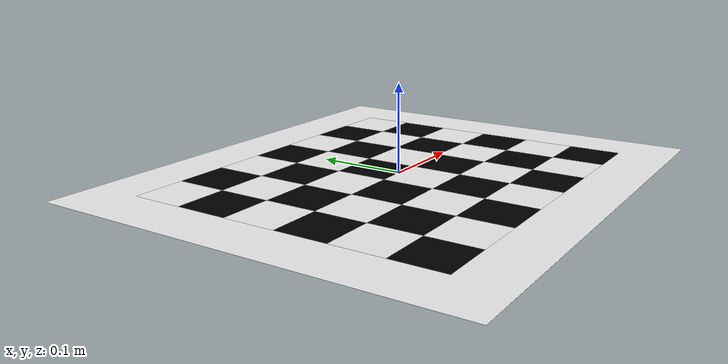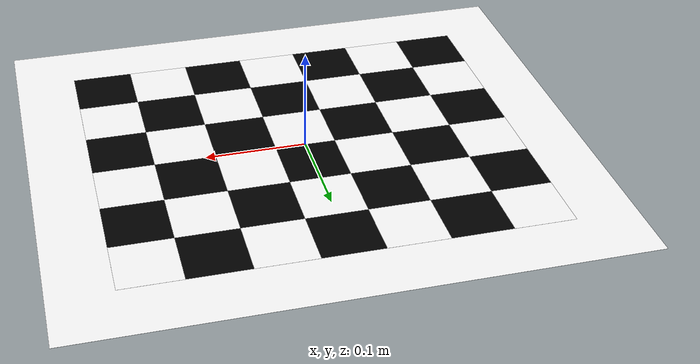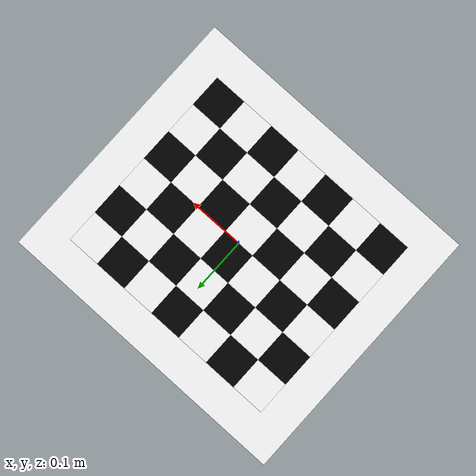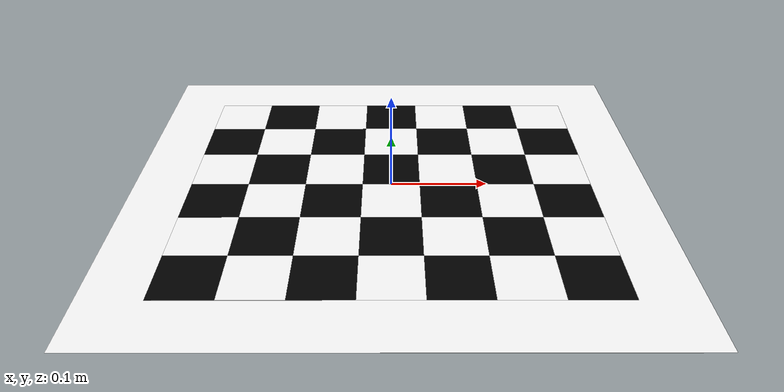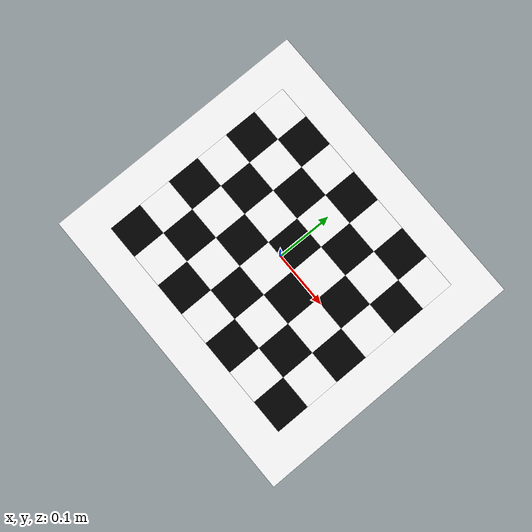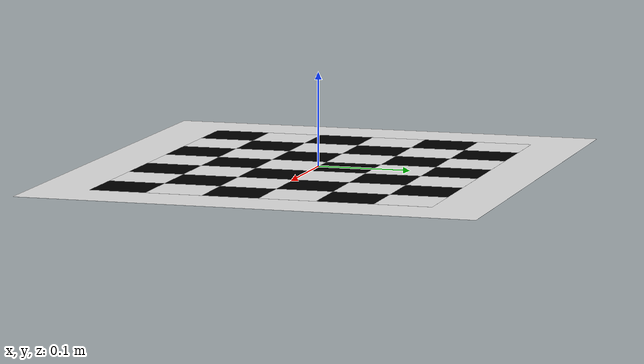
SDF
<?xml version="1.0"?>
<sdf version="1.4">
  <model name="checkerboard_7_6_0_06">
  <static>true</static>
  <link name="checkerboard_7_6_0_06_body">
      <visual name="checker_0_0">
        <pose>-0.18 -0.15 0 0 0 0</pose>
        <geometry>
          <box>
            <size>0.06 0.06 0.0002</size>
          </box>
        </geometry>
        <material>
          <ambient>0 0 0 1</ambient>
          <diffuse>0 0 0 1</diffuse>
          <specular>0.1 0.1 0.1 1</specular>
          <emissive>0 0 0 0</emissive>
        </material>
      </visual>
      <visual name="checker_0_1">
        <pose>-0.18 -0.09 0 0 0 0</pose>
        <geometry>
          <box>
            <size>0.06 0.06 0.0002</size>
          </box>
        </geometry>
        <material>
          <ambient>1 1 1 1</ambient>
          <diffuse>1 1 1 1</diffuse>
          <specular>1 1 1 1</specular>
          <emissive>1 1 1 1</emissive>
        </material>
      </visual>
      <visual name="checker_0_2">
        <pose>-0.18 -0.03 0 0 0 0</pose>
        <geometry>
          <box>
            <size>0.06 0.06 0.0002</size>
          </box>
        </geometry>
        <material>
          <ambient>0 0 0 1</ambient>
          <diffuse>0 0 0 1</diffuse>
          <specular>0 0 0 1</specular>
          <emissive>0 0 0 1</emissive>
        </material>
      </visual>
      <visual name="checker_0_3">
        <pose>-0.18 0.03 0 0 0 0</pose>
        <geometry>
          <box>
            <size>0.06 0.06 0.0002</size>
          </box>
        </geometry>
        <material>
          <ambient>1 1 1 1</ambient>
          <diffuse>1 1 1 1</diffuse>
          <specular>1 1 1 1</specular>
          <emissive>1 1 1 1</emissive>
        </material>
      </visual>
      <visual name="checker_0_4">
        <pose>-0.18 0.09000000000000002 0 0 0 0</pose>
        <geometry>
          <box>
            <size>0.06 0.06 0.0002</size>
          </box>
        </geometry>
        <material>
          <ambient>0 0 0 1</ambient>
          <diffuse>0 0 0 1</diffuse>
          <specular>0 0 0 1</specular>
          <emissive>0 0 0 1</emissive>
        </material>
      </visual>
      <visual name="checker_0_5">
        <pose>-0.18 0.14999999999999997 0 0 0 0</pose>
        <geometry>
          <box>
            <size>0.06 0.06 0.0002</size>
          </box>
        </geometry>
        <material>
          <ambient>1 1 1 1</ambient>
          <diffuse>1 1 1 1</diffuse>
          <specular>1 1 1 1</specular>
          <emissive>1 1 1 1</emissive>
        </material>
      </visual>
      <visual name="checker_1_0">
        <pose>-0.12 -0.15 0 0 0 0</pose>
        <geometry>
          <box>
            <size>0.06 0.06 0.0002</size>
          </box>
        </geometry>
        <material>
          <ambient>1 1 1 1</ambient>
          <diffuse>1 1 1 1</diffuse>
          <specular>1 1 1 1</specular>
          <emissive>1 1 1 1</emissive>
        </material>
      </visual>
      <visual name="checker_1_1">
        <pose>-0.12 -0.09 0 0 0 0</pose>
        <geometry>
          <box>
            <size>0.06 0.06 0.0002</size>
          </box>
        </geometry>
        <material>
          <ambient>0 0 0 1</ambient>
          <diffuse>0 0 0 1</diffuse>
          <specular>0 0 0 1</specular>
          <emissive>0 0 0 1</emissive>
        </material>
      </visual>
      <visual name="checker_1_2">
        <pose>-0.12 -0.03 0 0 0 0</pose>
        <geometry>
          <box>
            <size>0.06 0.06 0.0002</size>
          </box>
        </geometry>
        <material>
          <ambient>1 1 1 1</ambient>
          <diffuse>1 1 1 1</diffuse>
          <specular>1 1 1 1</specular>
          <emissive>1 1 1 1</emissive>
        </material>
      </visual>
      <visual name="checker_1_3">
        <pose>-0.12 0.03 0 0 0 0</pose>
        <geometry>
          <box>
            <size>0.06 0.06 0.0002</size>
          </box>
        </geometry>
        <material>
          <ambient>0 0 0 1</ambient>
          <diffuse>0 0 0 1</diffuse>
          <specular>0 0 0 1</specular>
          <emissive>0 0 0 1</emissive>
        </material>
      </visual>
      <visual name="checker_1_4">
        <pose>-0.12 0.09000000000000002 0 0 0 0</pose>
        <geometry>
          <box>
            <size>0.06 0.06 0.0002</size>
          </box>
        </geometry>
        <material>
          <ambient>1 1 1 1</ambient>
          <diffuse>1 1 1 1</diffuse>
          <specular>1 1 1 1</specular>
          <emissive>1 1 1 1</emissive>
        </material>
      </visual>
      <visual name="checker_1_5">
        <pose>-0.12 0.14999999999999997 0 0 0 0</pose>
        <geometry>
          <box>
            <size>0.06 0.06 0.0002</size>
          </box>
        </geometry>
        <material>
          <ambient>0 0 0 1</ambient>
          <diffuse>0 0 0 1</diffuse>
          <specular>0 0 0 1</specular>
          <emissive>0 0 0 1</emissive>
        </material>
      </visual>
      <visual name="checker_2_0">
        <pose>-0.06 -0.15 0 0 0 0</pose>
        <geometry>
          <box>
            <size>0.06 0.06 0.0002</size>
          </box>
        </geometry>
        <material>
          <ambient>0 0 0 1</ambient>
          <diffuse>0 0 0 1</diffuse>
          <specular>0 0 0 1</specular>
          <emissive>0 0 0 1</emissive>
        </material>
      </visual>
      <visual name="checker_2_1">
        <pose>-0.06 -0.09 0 0 0 0</pose>
        <geometry>
          <box>
            <size>0.06 0.06 0.0002</size>
          </box>
        </geometry>
        <material>
          <ambient>1 1 1 1</ambient>
          <diffuse>1 1 1 1</diffuse>
          <specular>1 1 1 1</specular>
          <emissive>1 1 1 1</emissive>
        </material>
      </visual>
      <visual name="checker_2_2">
        <pose>-0.06 -0.03 0 0 0 0</pose>
        <geometry>
          <box>
            <size>0.06 0.06 0.0002</size>
          </box>
        </geometry>
        <material>
          <ambient>0 0 0 1</ambient>
          <diffuse>0 0 0 1</diffuse>
          <specular>0 0 0 1</specular>
          <emissive>0 0 0 1</emissive>
        </material>
      </visual>
      <visual name="checker_2_3">
        <pose>-0.06 0.03 0 0 0 0</pose>
        <geometry>
          <box>
            <size>0.06 0.06 0.0002</size>
          </box>
        </geometry>
        <material>
          <ambient>1 1 1 1</ambient>
          <diffuse>1 1 1 1</diffuse>
          <specular>1 1 1 1</specular>
          <emissive>1 1 1 1</emissive>
        </material>
      </visual>
      <visual name="checker_2_4">
        <pose>-0.06 0.09000000000000002 0 0 0 0</pose>
        <geometry>
          <box>
            <size>0.06 0.06 0.0002</size>
          </box>
        </geometry>
        <material>
          <ambient>0 0 0 1</ambient>
          <diffuse>0 0 0 1</diffuse>
          <specular>0 0 0 1</specular>
          <emissive>0 0 0 1</emissive>
        </material>
      </visual>
      <visual name="checker_2_5">
        <pose>-0.06 0.14999999999999997 0 0 0 0</pose>
        <geometry>
          <box>
            <size>0.06 0.06 0.0002</size>
          </box>
        </geometry>
        <material>
          <ambient>1 1 1 1</ambient>
          <diffuse>1 1 1 1</diffuse>
          <specular>1 1 1 1</specular>
          <emissive>1 1 1 1</emissive>
        </material>
      </visual>
      <visual name="checker_3_0">
        <pose>0.0 -0.15 0 0 0 0</pose>
        <geometry>
          <box>
            <size>0.06 0.06 0.0002</size>
          </box>
        </geometry>
        <material>
          <ambient>1 1 1 1</ambient>
          <diffuse>1 1 1 1</diffuse>
          <specular>1 1 1 1</specular>
          <emissive>1 1 1 1</emissive>
        </material>
      </visual>
      <visual name="checker_3_1">
        <pose>0.0 -0.09 0 0 0 0</pose>
        <geometry>
          <box>
            <size>0.06 0.06 0.0002</size>
          </box>
        </geometry>
        <material>
          <ambient>0 0 0 1</ambient>
          <diffuse>0 0 0 1</diffuse>
          <specular>0 0 0 1</specular>
          <emissive>0 0 0 1</emissive>
        </material>
      </visual>
      <visual name="checker_3_2">
        <pose>0.0 -0.03 0 0 0 0</pose>
        <geometry>
          <box>
            <size>0.06 0.06 0.0002</size>
          </box>
        </geometry>
        <material>
          <ambient>1 1 1 1</ambient>
          <diffuse>1 1 1 1</diffuse>
          <specular>1 1 1 1</specular>
          <emissive>1 1 1 1</emissive>
        </material>
      </visual>
      <visual name="checker_3_3">
        <pose>0.0 0.03 0 0 0 0</pose>
        <geometry>
          <box>
            <size>0.06 0.06 0.0002</size>
          </box>
        </geometry>
        <material>
          <ambient>0 0 0 1</ambient>
          <diffuse>0 0 0 1</diffuse>
          <specular>0 0 0 1</specular>
          <emissive>0 0 0 1</emissive>
        </material>
      </visual>
      <visual name="checker_3_4">
        <pose>0.0 0.09000000000000002 0 0 0 0</pose>
        <geometry>
          <box>
            <size>0.06 0.06 0.0002</size>
          </box>
        </geometry>
        <material>
          <ambient>1 1 1 1</ambient>
          <diffuse>1 1 1 1</diffuse>
          <specular>1 1 1 1</specular>
          <emissive>1 1 1 1</emissive>
        </material>
      </visual>
      <visual name="checker_3_5">
        <pose>0.0 0.14999999999999997 0 0 0 0</pose>
        <geometry>
          <box>
            <size>0.06 0.06 0.0002</size>
          </box>
        </geometry>
        <material>
          <ambient>0 0 0 1</ambient>
          <diffuse>0 0 0 1</diffuse>
          <specular>0 0 0 1</specular>
          <emissive>0 0 0 1</emissive>
        </material>
      </visual>
      <visual name="checker_4_0">
        <pose>0.060000000000000026 -0.15 0 0 0 0</pose>
        <geometry>
          <box>
            <size>0.06 0.06 0.0002</size>
          </box>
        </geometry>
        <material>
          <ambient>0 0 0 1</ambient>
          <diffuse>0 0 0 1</diffuse>
          <specular>0 0 0 1</specular>
          <emissive>0 0 0 1</emissive>
        </material>
      </visual>
      <visual name="checker_4_1">
        <pose>0.060000000000000026 -0.09 0 0 0 0</pose>
        <geometry>
          <box>
            <size>0.06 0.06 0.0002</size>
          </box>
        </geometry>
        <material>
          <ambient>1 1 1 1</ambient>
          <diffuse>1 1 1 1</diffuse>
          <specular>1 1 1 1</specular>
          <emissive>1 1 1 1</emissive>
        </material>
      </visual>
      <visual name="checker_4_2">
        <pose>0.060000000000000026 -0.03 0 0 0 0</pose>
        <geometry>
          <box>
            <size>0.06 0.06 0.0002</size>
          </box>
        </geometry>
        <material>
          <ambient>0 0 0 1</ambient>
          <diffuse>0 0 0 1</diffuse>
          <specular>0 0 0 1</specular>
          <emissive>0 0 0 1</emissive>
        </material>
      </visual>
      <visual name="checker_4_3">
        <pose>0.060000000000000026 0.03 0 0 0 0</pose>
        <geometry>
          <box>
            <size>0.06 0.06 0.0002</size>
          </box>
        </geometry>
        <material>
          <ambient>1 1 1 1</ambient>
          <diffuse>1 1 1 1</diffuse>
          <specular>1 1 1 1</specular>
          <emissive>1 1 1 1</emissive>
        </material>
      </visual>
      <visual name="checker_4_4">
        <pose>0.060000000000000026 0.09000000000000002 0 0 0 0</pose>
        <geometry>
          <box>
            <size>0.06 0.06 0.0002</size>
          </box>
        </geometry>
        <material>
          <ambient>0 0 0 1</ambient>
          <diffuse>0 0 0 1</diffuse>
          <specular>0 0 0 1</specular>
          <emissive>0 0 0 1</emissive>
        </material>
      </visual>
      <visual name="checker_4_5">
        <pose>0.060000000000000026 0.14999999999999997 0 0 0 0</pose>
        <geometry>
          <box>
            <size>0.06 0.06 0.0002</size>
          </box>
        </geometry>
        <material>
          <ambient>1 1 1 1</ambient>
          <diffuse>1 1 1 1</diffuse>
          <specular>1 1 1 1</specular>
          <emissive>1 1 1 1</emissive>
        </material>
      </visual>
      <visual name="checker_5_0">
        <pose>0.11999999999999997 -0.15 0 0 0 0</pose>
        <geometry>
          <box>
            <size>0.06 0.06 0.0002</size>
          </box>
        </geometry>
        <material>
          <ambient>1 1 1 1</ambient>
          <diffuse>1 1 1 1</diffuse>
          <specular>1 1 1 1</specular>
          <emissive>1 1 1 1</emissive>
        </material>
      </visual>
      <visual name="checker_5_1">
        <pose>0.11999999999999997 -0.09 0 0 0 0</pose>
        <geometry>
          <box>
            <size>0.06 0.06 0.0002</size>
          </box>
        </geometry>
        <material>
          <ambient>0 0 0 1</ambient>
          <diffuse>0 0 0 1</diffuse>
          <specular>0 0 0 1</specular>
          <emissive>0 0 0 1</emissive>
        </material>
      </visual>
      <visual name="checker_5_2">
        <pose>0.11999999999999997 -0.03 0 0 0 0</pose>
        <geometry>
          <box>
            <size>0.06 0.06 0.0002</size>
          </box>
        </geometry>
        <material>
          <ambient>1 1 1 1</ambient>
          <diffuse>1 1 1 1</diffuse>
          <specular>1 1 1 1</specular>
          <emissive>1 1 1 1</emissive>
        </material>
      </visual>
      <visual name="checker_5_3">
        <pose>0.11999999999999997 0.03 0 0 0 0</pose>
        <geometry>
          <box>
            <size>0.06 0.06 0.0002</size>
          </box>
        </geometry>
        <material>
          <ambient>0 0 0 1</ambient>
          <diffuse>0 0 0 1</diffuse>
          <specular>0 0 0 1</specular>
          <emissive>0 0 0 1</emissive>
        </material>
      </visual>
      <visual name="checker_5_4">
        <pose>0.11999999999999997 0.09000000000000002 0 0 0 0</pose>
        <geometry>
          <box>
            <size>0.06 0.06 0.0002</size>
          </box>
        </geometry>
        <material>
          <ambient>1 1 1 1</ambient>
          <diffuse>1 1 1 1</diffuse>
          <specular>1 1 1 1</specular>
          <emissive>1 1 1 1</emissive>
        </material>
      </visual>
      <visual name="checker_5_5">
        <pose>0.11999999999999997 0.14999999999999997 0 0 0 0</pose>
        <geometry>
          <box>
            <size>0.06 0.06 0.0002</size>
          </box>
        </geometry>
        <material>
          <ambient>0 0 0 1</ambient>
          <diffuse>0 0 0 1</diffuse>
          <specular>0 0 0 1</specular>
          <emissive>0 0 0 1</emissive>
        </material>
      </visual>
      <visual name="checker_6_0">
        <pose>0.18000000000000002 -0.15 0 0 0 0</pose>
        <geometry>
          <box>
            <size>0.06 0.06 0.0002</size>
          </box>
        </geometry>
        <material>
          <ambient>0 0 0 1</ambient>
          <diffuse>0 0 0 1</diffuse>
          <specular>0 0 0 1</specular>
          <emissive>0 0 0 1</emissive>
        </material>
      </visual>
      <visual name="checker_6_1">
        <pose>0.18000000000000002 -0.09 0 0 0 0</pose>
        <geometry>
          <box>
            <size>0.06 0.06 0.0002</size>
          </box>
        </geometry>
        <material>
          <ambient>1 1 1 1</ambient>
          <diffuse>1 1 1 1</diffuse>
          <specular>1 1 1 1</specular>
          <emissive>1 1 1 1</emissive>
        </material>
      </visual>
      <visual name="checker_6_2">
        <pose>0.18000000000000002 -0.03 0 0 0 0</pose>
        <geometry>
          <box>
            <size>0.06 0.06 0.0002</size>
          </box>
        </geometry>
        <material>
          <ambient>0 0 0 1</ambient>
          <diffuse>0 0 0 1</diffuse>
          <specular>0 0 0 1</specular>
          <emissive>0 0 0 1</emissive>
        </material>
      </visual>
      <visual name="checker_6_3">
        <pose>0.18000000000000002 0.03 0 0 0 0</pose>
        <geometry>
          <box>
            <size>0.06 0.06 0.0002</size>
          </box>
        </geometry>
        <material>
          <ambient>1 1 1 1</ambient>
          <diffuse>1 1 1 1</diffuse>
          <specular>1 1 1 1</specular>
          <emissive>1 1 1 1</emissive>
        </material>
      </visual>
      <visual name="checker_6_4">
        <pose>0.18000000000000002 0.09000000000000002 0 0 0 0</pose>
        <geometry>
          <box>
            <size>0.06 0.06 0.0002</size>
          </box>
        </geometry>
        <material>
          <ambient>0 0 0 1</ambient>
          <diffuse>0 0 0 1</diffuse>
          <specular>0 0 0 1</specular>
          <emissive>0 0 0 1</emissive>
        </material>
      </visual>
      <visual name="checker_6_5">
        <pose>0.18000000000000002 0.14999999999999997 0 0 0 0</pose>
        <geometry>
          <box>
            <size>0.06 0.06 0.0002</size>
          </box>
        </geometry>
        <material>
          <ambient>1 1 1 1</ambient>
          <diffuse>1 1 1 1</diffuse>
          <specular>1 1 1 1</specular>
          <emissive>1 1 1 1</emissive>
        </material>
      </visual>
      <visual name="checker_backdrop">
        <pose>0 0 0 0 0 0</pose>
        <geometry>
          <box>
            <size>0.54 0.48 0.0001</size>
          </box>
        </geometry>
        <material>
          <ambient>1 1 1 1</ambient>
          <diffuse>1 1 1 1</diffuse>
          <specular>1 1 1 1</specular>
          <emissive>1 1 1 1</emissive>
        </material>
      </visual>
    </link>
  </model>
</sdf>
